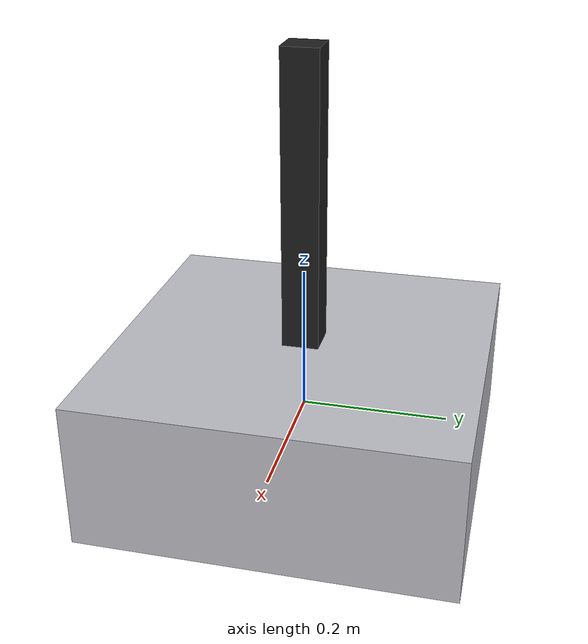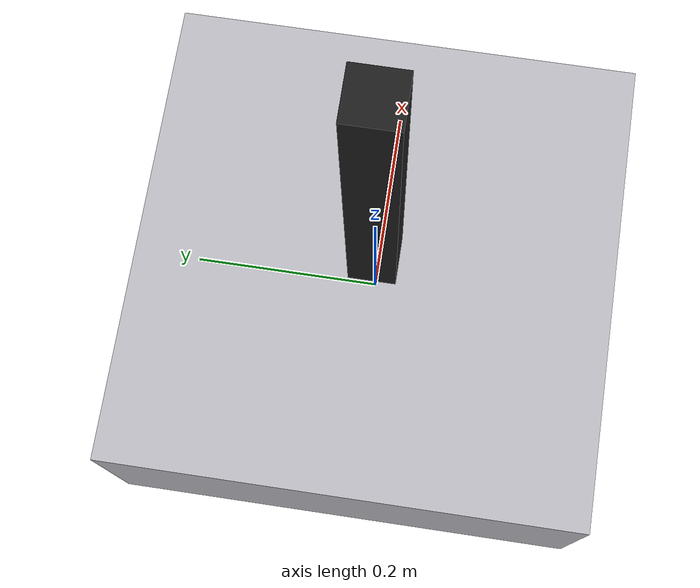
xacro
<?xml version="1.0"?>
<robot name="xacro_roundtrip_robot" xmlns:xacro="http://www.ros.org/wiki/xacro">

  <!-- 1. Includes -->
  <xacro:include filename="imports/materials.xacro" />
  <xacro:include filename="macros/inertials.xacro" />

  <!-- 2. Arguments -->
  <xacro:arg name="robot_name" default="forge_bot"/>
  <xacro:arg name="use_arm" default="true"/>

  <!-- 3. Properties -->
  <xacro:property name="PI" value="3.1415926535897931"/>
  <xacro:property name="base_width" value="0.5"/>
  <xacro:property name="base_length" value="0.5"/>
  <xacro:property name="base_height" value="0.2"/>
  <xacro:property name="base_mass" value="5.0"/>

  <!-- 4. Macros with Block Parameters -->
  <xacro:macro name="standard_link" params="name color mass width height depth *origin">
    <link name="${name}">
      <visual>
        <xacro:insert_block name="origin" />
        <geometry>
          <box size="${width} ${depth} ${height}"/>
        </geometry>
        <material name="${color}"/>
      </visual>
      <collision>
        <xacro:insert_block name="origin" />
        <geometry>
          <box size="${width} ${depth} ${height}"/>
        </geometry>
      </collision>
      <xacro:box_inertia m="${mass}" w="${width}" h="${height}" d="${depth}" />
    </link>
  </xacro:macro>

  <!-- 5. Main Content -->
  <link name="base_link">
    <visual>
      <geometry>
        <box size="${base_width} ${base_length} ${base_height}"/>
      </geometry>
      <material name="silver"/>
    </visual>
    <xacro:box_inertia m="${base_mass}" w="${base_width}" h="${base_height}" d="${base_length}" />
  </link>

  <!-- 6. Conditional Logic & Math -->
  <xacro:if value="$(arg use_arm)">
    <xacro:property name="arm_mass" value="1.0" />
    <xacro:property name="arm_length" value="0.4" />

    <!-- Macro Call with block -->
    <xacro:standard_link name="arm_link" color="black"
                       mass="${arm_mass}"
                       width="0.05" depth="0.05"
                       height="${arm_length}">
      <origin xyz="0 0 ${arm_length / 2}" rpy="0 0 0"/>
    </xacro:standard_link>

    <joint name="arm_joint" type="revolute">
      <parent link="base_link"/>
      <child link="arm_link"/>
      <origin xyz="0 0 ${base_height / 2}" rpy="0 0 0"/>
      <axis xyz="0 1 0"/>
      <limit lower="-${PI/2}" upper="${PI/2}" effort="10" velocity="1.0"/>
    </joint>
  </xacro:if>

  <xacro:unless value="$(arg use_arm)">
    <link name="no_arm_payload">
      <visual>
        <geometry>
          <sphere radius="0.1"/>
        </geometry>
      </visual>
    </link>
    <joint name="payload_joint" type="fixed">
      <parent link="base_link"/>
      <child link="no_arm_payload"/>
      <origin xyz="0 0 ${base_height}" rpy="0 0 0"/>
    </joint>
  </xacro:unless>

</robot>

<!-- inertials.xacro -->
<robot xmlns:xacro="http://www.ros.org/wiki/xacro">
  <!-- Macro for box inertia -->
  <xacro:macro name="box_inertia" params="m w h d">
    <inertial>
      <origin xyz="0 0 0" rpy="0 0 0"/>
      <mass value="${m}"/>
      <inertia ixx="${(m/12.0) * (h*h + d*d)}" ixy="0" ixz="0"
               iyy="${(m/12.0) * (w*w + d*d)}" iyz="0"
               izz="${(m/12.0) * (w*w + h*h)}"/>
    </inertial>
  </xacro:macro>

  <!-- Macro for cylinder inertia -->
  <xacro:macro name="cylinder_inertia" params="m r h">
    <inertial>
      <origin xyz="0 0 0" rpy="0 0 0"/>
      <mass value="${m}"/>
      <inertia ixx="${(m/12.0) * (3*r*r + h*h)}" ixy="0" ixz="0"
               iyy="${(m/12.0) * (3*r*r + h*h)}" iyz="0"
               izz="${(m/2.0) * (r*r)}"/>
    </inertial>
  </xacro:macro>
</robot>
